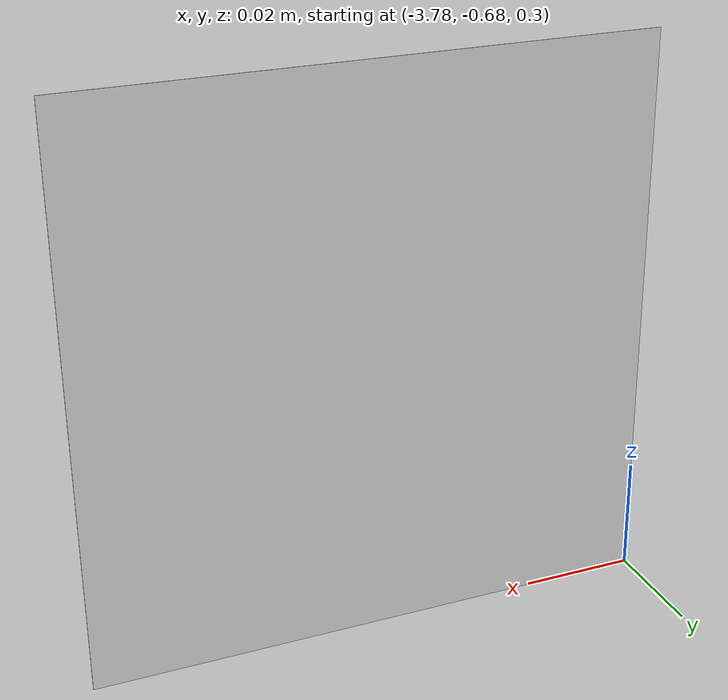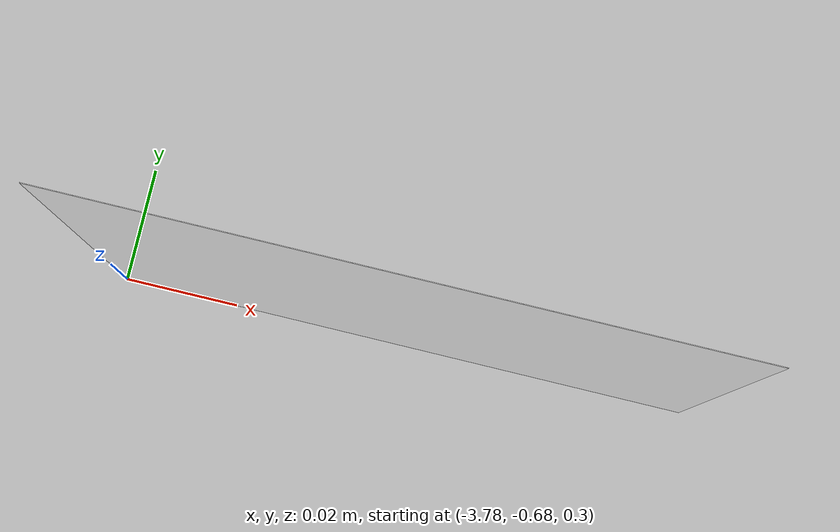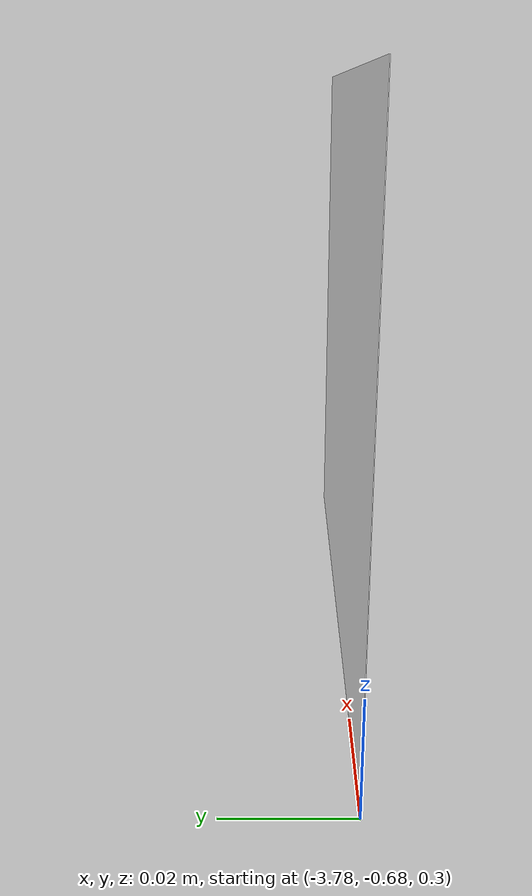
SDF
<?xml version="1.0" encoding="UTF-8"?>
<sdf version='1.9'>
  <model name='arucotag'>
    <static>true</static>
    <pose>-3.73 -0.68 0.35 -1.57 0 0</pose>
    <link name='base'>
      <visual name='base_visual'>
        <geometry>
          <plane>
            <normal>0 0 1</normal>
            <size>0.1 0.1</size>
          </plane>
        </geometry>
        <material>
          <diffuse>1 1 1 1</diffuse>
          <specular>0.4 0.4 0.4 1</specular>
          <pbr>
            <metal>
              <albedo_map>model://arucotag/aruco-115.png</albedo_map>
            </metal>
          </pbr>
        </material>
      </visual>
    </link>
  </model>
</sdf>
